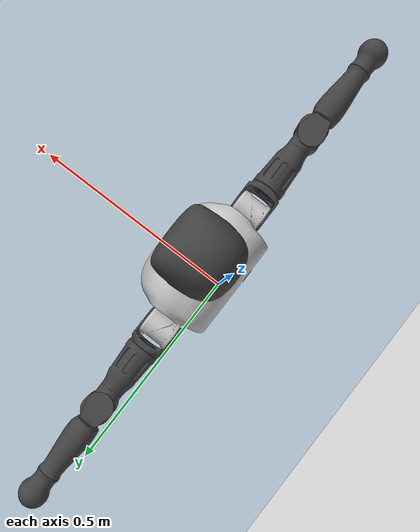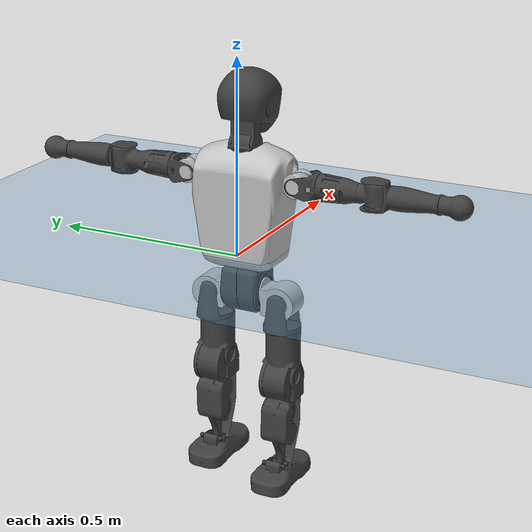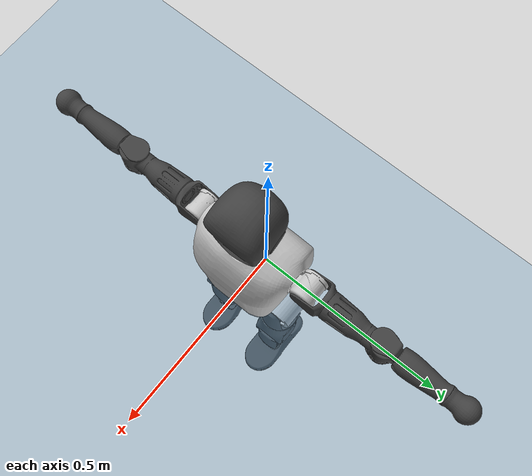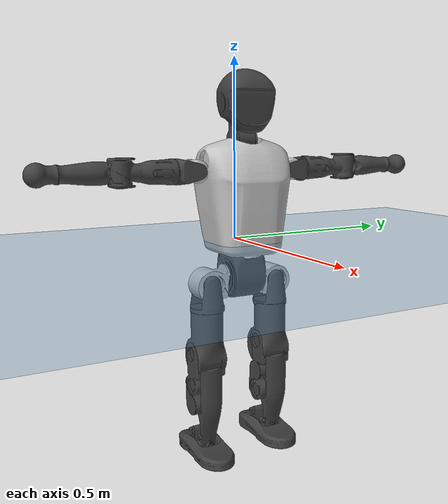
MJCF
<mujoco model="T1">
  <compiler angle="radian" assetdir="assets" balanceinertia="true" inertiafromgeom="false"/>

  <option timestep="0.005" density="1.2" viscosity="2e-05"/>

  <size nkey="1"/>

  <visual>
    <quality shadowsize="8192"/>
    <map shadowclip="0.5"/>
  </visual>

  <default>
    <default class="/">
      <joint armature="0.01" damping="0.01" frictionloss="0.1"/>
      <geom contype="0" conaffinity="0" group="1" solref="-1000 -80"/>
      <site size="0.01 0.005 0.005" group="5"/>
      <general forcelimited="true" biastype="affine" gainprm="25" biasprm="0 -25 -0.6"/>
      <default class="t1">
        <geom rgba="0.25 0.25 0.25 1"/>
        <default class="visual">
          <geom type="mesh" group="2"/>
        </default>
        <default class="collision">
          <geom group="3"/>
        </default>
        <default class="foot">
          <geom size="0.1115 0.05 0.015" type="box" condim="6" group="4" priority="1" solimp="0.015 1 0.015"/>
        </default>
        <default class="reward_collision_sphere">
          <geom group="5" rgba="1 0 0 1"/>
        </default>
      </default>
    </default>
  </default>

  <asset>
    <texture type="skybox" colorspace="auto" name="//unnamed_texture_0" builtin="gradient" rgb1="0.95 0.95 0.95" rgb2="0.95 0.95 0.95" width="100" height="600"/>
    <texture type="2d" colorspace="auto" name="texplane" builtin="checker" rgb1="0.345 0.575 0.748" rgb2="0.345 0.575 0.748" markrgb="1 1 1" width="512" height="512"/>
    <material name="MatPlane" class="/" texture="texplane" texuniform="true" texrepeat="2 2" specular="0.9"/>
    <mesh name="Trunk" class="/" file="Trunk.stl"/>
    <mesh name="H1" class="/" file="H1.stl"/>
    <mesh name="H2" class="/" file="H2.stl"/>
    <mesh name="AL1" class="/" file="AL1.stl"/>
    <mesh name="AL2" class="/" file="AL2.stl"/>
    <mesh name="AL3" class="/" file="AL3.stl"/>
    <mesh name="left_hand_link" class="/" file="left_hand_link.stl"/>
    <mesh name="AR1" class="/" file="AR1.stl"/>
    <mesh name="AR2" class="/" file="AR2.stl"/>
    <mesh name="AR3" class="/" file="AR3.stl"/>
    <mesh name="right_hand_link" class="/" file="right_hand_link.stl"/>
    <mesh name="Waist" class="/" file="Waist.stl"/>
    <mesh name="Hip_Pitch_Left" class="/" file="Hip_Pitch_Left.stl"/>
    <mesh name="Hip_Roll_Left" class="/" file="Hip_Roll_Left.stl"/>
    <mesh name="Hip_Yaw_Left" class="/" file="Hip_Yaw_Left.stl"/>
    <mesh name="Shank_Left" class="/" file="Shank_Left.stl"/>
    <mesh name="Ankle_Cross_Left" class="/" file="Ankle_Cross_Left.stl"/>
    <mesh name="left_foot_link" class="/" file="left_foot_link.stl"/>
    <mesh name="Hip_Pitch_Right" class="/" file="Hip_Pitch_Right.stl"/>
    <mesh name="Hip_Roll_Right" class="/" file="Hip_Roll_Right.stl"/>
    <mesh name="Hip_Yaw_Right" class="/" file="Hip_Yaw_Right.stl"/>
    <mesh name="Shank_Right" class="/" file="Shank_Right.stl"/>
    <mesh name="Ankle_Cross_Right" class="/" file="Ankle_Cross_Right.stl"/>
    <mesh name="right_foot_link" class="/" file="right_foot_link.stl"/>
  </asset>

  <worldbody>
    <geom name="floor" class="/" size="100 100 0.125" type="plane" group="0" material="MatPlane"/>
    <light name="toplight_shadow" class="/" pos="0 0 5" dir="0.0990148 0.0990148 -0.990148" type="directional" ambient="0.04 0.04 0.04" diffuse="0.55 0.55 0.55" specular="0.12 0.12 0.12"/>
    <light name="toplight_fill" class="/" pos="0 0 5" dir="0.0990148 0.0990148 -0.990148" type="directional" castshadow="false" ambient="0.04 0.04 0.04" diffuse="0.3 0.3 0.3" specular="0.08 0.08 0.08"/>
    <body name="trunk" childclass="t1" pos="-0.00275231 -0.000826168 0.00179652" quat="1 -0.000157263 -0.000188584 0.000117627">
      <inertial pos="0.0420144 0.00155248 0.0965694" quat="0.999963 -7.0327e-05 -0.00863268 0.000187979" mass="7.37549" diaginertia="0.0222974 0.0516071 0.0310679"/>
      <joint name="//unnamed_joint_0" type="free" armature="0" damping="0" frictionloss="0"/>
      <geom name="//unnamed_geom_1" class="visual" rgba="0.76 0.76 0.76 1" mesh="Trunk"/>
      <geom name="//unnamed_geom_2" class="collision" size="0.0643359 0.0857811 0.128672" pos="0.0450587 0 0.107071" type="box"/>
      <geom name="//unnamed_geom_3" class="reward_collision_sphere" size="0.0986483" pos="0.0450587 0 0.0892256"/>
      <geom name="//unnamed_geom_4" class="reward_collision_sphere" size="0.0128672" pos="0.0450587 0.0790669 0"/>
      <geom name="//unnamed_geom_5" class="reward_collision_sphere" size="0.0128672" pos="0.0450587 -0.0790669 0"/>
      <geom name="//unnamed_geom_6" class="reward_collision_sphere" size="0.0128672" pos="0.0450587 0.0995313 0.160606"/>
      <geom name="//unnamed_geom_7" class="reward_collision_sphere" size="0.0128672" pos="0.0450587 -0.0995313 0.160606"/>
      <site name="imu" pos="0.00897948 -0.0113776 0.0107359" size="0.00857811"/>
      <camera name="track" pos="0 -1.8604 0" quat="0.707107 0.707107 0 0" mode="trackcom"/>
      <camera name="ego_camera" pos="0.0916194 0 0.374748" quat="-0.5 -0.5 0.5 0.5"/>
      <body name="H1" pos="0.0471409 0.00043796 0.214632" quat="1 -6.98428e-07 2.63429e-05 1.06243e-05">
        <inertial pos="-0.00228958 0.00106381 0.0529724" quat="0.761287 -0.0128046 -0.00399882 0.648277" mass="0.26673" diaginertia="5.61151e-05 0.000154636 8.24653e-05"/>
        <joint name="AAHead_yaw" pos="0 0 0" axis="-0.0071073 -0.00215743 0.999972" range="-1.62479 1.54142" armature="0.00789736" damping="0" frictionloss="0.0797287"/>
        <geom name="//unnamed_geom_8" class="visual" mesh="H1"/>
        <body name="H2" pos="-0.000547807 -0.000257065 0.0572984" quat="1 -1.97095e-05 2.41892e-05 5.22054e-05">
          <inertial pos="0.00641382 0.00216883 0.0873189" quat="0.990437 0.0967 -0.0662733 -0.0727403" mass="0.393845" diaginertia="0.000464166 0.00137137 0.000963445"/>
          <joint name="Head_pitch" pos="0 0 0" axis="0.000644836 -0.999991 -0.00413326" range="-1.21104 0.346473" armature="0.00863004" damping="0.0143444" frictionloss="0.0764387"/>
          <geom name="//unnamed_geom_9" class="visual" mesh="H2"/>
          <geom name="//unnamed_geom_10" class="collision" size="0.0686249" pos="0.00750979 0 0.0981482"/>
          <geom name="//unnamed_geom_11" class="reward_collision_sphere" size="0.077203" pos="0.0150196 0 0.0892256"/>
        </body>
      </body>
      <body name="AL1" pos="0.0442474 0.102137 0.19323" quat="1 5.00897e-05 0.000434751 0.000120831">
        <inertial pos="-0.00356085 0.0412969 0.0011199" quat="0.506972 0.497576 -0.501624 0.493731" mass="0.333144" diaginertia="0.000326826 0.000943164 0.000169641"/>
        <joint name="Left_Shoulder_Pitch" pos="0 0 0" axis="-0.00158699 0.999894 -0.0144946" stiffness="0.00628169" range="-3.31953 1.27661" armature="0.00913426" damping="0.00781569" frictionloss="0.0816795"/>
        <geom name="//unnamed_geom_12" class="visual" rgba="0.76 0.76 0.76 1" mesh="AL1"/>
        <body name="AL2" pos="-0.000523335 0.0436918 -0.00275345" quat="1 0.000207343 0.000396153 -0.000275346">
          <inertial pos="0.00134673 0.032565 0.000253041" quat="0.490793 0.509098 -0.487286 0.512342" mass="0.0968546" diaginertia="9.35431e-05 0.000238464 9.6033e-05"/>
          <joint name="Left_Shoulder_Roll" pos="0 0 0" axis="-0.999993 0.000193551 -0.00377823" range="-1.63092 1.78985" armature="0.00863228" damping="0.0112525" frictionloss="0.0848354"/>
          <geom name="//unnamed_geom_13" class="visual" mesh="AL2"/>
          <body name="AL3" pos="0.00152735 0.0558538 0.00300766" quat="1 0.000313267 0.00066375 0.000488277">
            <inertial pos="0.000234981 0.078713 -0.000587616" quat="0.707207 0.706988 -0.00270871 0.00437718" mass="0.656911" diaginertia="0.00316698 0.0088651 0.000347617"/>
            <joint name="Left_Elbow_Pitch" pos="0 0 0" axis="0.00219465 -0.999998 0.000415397" range="-2.25893 2.26367" armature="0.00765959" damping="0.0172318" frictionloss="0.0802633"/>
            <geom name="//unnamed_geom_14" class="visual" mesh="AL3"/>
            <geom name="//unnamed_geom_15" class="collision" size="0.0257343 0.0643359" pos="0 0.0465099 0" quat="0.707105 0.707108 0 0" type="cylinder"/>
            <geom name="//unnamed_geom_16" class="reward_collision_sphere" size="0.0308812"/>
            <body name="left_hand_link" pos="-0.0022012 0.137286 0.00150995" quat="1 9.77711e-05 -0.000110334 4.40035e-05">
              <inertial pos="0.000953166 0.0999057 0.00269795" quat="0.715072 0.699 0.00753725 0.00359668" mass="0.200133" diaginertia="0.00197349 0.00568712 0.000120307"/>
              <joint name="Left_Elbow_Yaw" pos="0 0 0" axis="0.00386319 0.00552871 0.999977" stiffness="0.00408571" range="-2.46177 -0.0529403" armature="0.00854566" damping="0.01418" frictionloss="0.0887082"/>
              <geom name="//unnamed_geom_17" class="visual" mesh="left_hand_link"/>
              <geom name="//unnamed_geom_18" class="collision" size="0.0257343 0.0750585" pos="0 0.120926 0" quat="0.707105 0.707108 0 0" type="cylinder"/>
              <geom name="//unnamed_geom_19" class="reward_collision_sphere" size="0.0428906"/>
              <geom name="//unnamed_geom_20" class="reward_collision_sphere" size="0.0300234" pos="0 0.102322 0"/>
              <geom name="//unnamed_geom_21" class="reward_collision_sphere" size="0.0300234" pos="0 0.199993 0"/>
            </body>
          </body>
        </body>
      </body>
      <body name="AR1" pos="0.0454705 -0.0978363 0.193054" quat="0.999999 -0.000357826 0.00131743 1.09964e-05">
        <inertial pos="-0.00231344 -0.0428158 -0.000442304" quat="0.505683 0.49765 -0.503949 0.49261" mass="0.324323" diaginertia="0.000317225 0.00087351 0.000160642"/>
        <joint name="Right_Shoulder_Pitch" pos="0 0 0" axis="-0.00109343 -0.999999 -9.24882e-05" stiffness="0.00404246" range="-1.19502 3.32328" armature="0.00970951" damping="0.0085084" frictionloss="0.0923766"/>
        <geom name="//unnamed_geom_22" class="visual" rgba="0.76 0.76 0.76 1" mesh="AR1"/>
        <body name="AR2" pos="-0.000737088 -0.0456806 -0.000490862" quat="0.999999 -6.29724e-05 0.000525445 0.00106936">
          <inertial pos="0.0002902 -0.0361837 -0.00216085" quat="0.50847 0.493094 -0.50242 0.495874" mass="0.100762" diaginertia="9.36781e-05 0.000238497 9.97639e-05"/>
          <joint name="Right_Shoulder_Roll" pos="0 0 0" axis="-0.999815 0.0158053 0.0109867" range="-1.75645 1.59094" armature="0.00857274" damping="0.00855708" frictionloss="0.0829053"/>
          <geom name="//unnamed_geom_23" class="visual" mesh="AR2"/>
          <body name="AR3" pos="-0.000568776 -0.0571895 0.000124255" quat="1 0.000598508 -6.73378e-05 -0.000172331">
            <inertial pos="-0.00138401 -0.0800398 0.000683391" quat="0.706495 0.707718 0.000126127 -2.24899e-05" mass="0.627563" diaginertia="0.00299671 0.00869583 0.000330494"/>
            <joint name="Right_Elbow_Pitch" pos="0 0 0" axis="0.000216592 1 -0.000351806" range="-2.30198 2.28591" armature="0.00859275" damping="0.0136452" frictionloss="0.0797941"/>
            <geom name="//unnamed_geom_24" class="visual" mesh="AR3"/>
            <geom name="//unnamed_geom_25" class="collision" size="0.0257343 0.0643359" pos="0 -0.0465099 0" quat="0.707105 0.707108 0 0" type="cylinder"/>
            <geom name="//unnamed_geom_26" class="reward_collision_sphere" size="0.0308812"/>
            <body name="right_hand_link" pos="-0.00277348 -0.135628 0.00122281" quat="1 -3.90117e-05 5.65159e-05 -2.37248e-05">
              <inertial pos="-0.00030725 -0.0993586 -0.000446256" quat="0.707718 0.70648 0.0045886 -0.00117575" mass="0.201362" diaginertia="0.00194044 0.00564265 0.000116474"/>
              <joint name="Right_Elbow_Yaw" pos="0 0 0" axis="0.00125488 0.00470694 0.999988" stiffness="0.00133061" range="-0.0482591 2.43265" armature="0.00729312" damping="0.0117122" frictionloss="0.097068"/>
              <geom name="//unnamed_geom_27" class="visual" mesh="right_hand_link"/>
              <geom name="//unnamed_geom_28" class="collision" size="0.0257343 0.0750585" pos="0 -0.120926 0" quat="0.707105 0.707108 0 0" type="cylinder"/>
              <geom name="//unnamed_geom_29" class="reward_collision_sphere" size="0.0428906"/>
              <geom name="//unnamed_geom_30" class="reward_collision_sphere" size="0.0300234" pos="0 -0.102322 0"/>
              <geom name="//unnamed_geom_31" class="reward_collision_sphere" size="0.0300234" pos="0 -0.199993 0"/>
            </body>
          </body>
        </body>
      </body>
      <body name="Waist" pos="0.0485511 -0.00410536 -0.100545" quat="1 0.00010712 -2.34139e-05 -1.60701e-06">
        <inertial pos="0.00168161 0.00146329 0.00449763" quat="0.983623 -0.00118565 -0.180231 0.000992815" mass="1.57499" diaginertia="0.00123446 0.00347427 0.00254029"/>
        <joint name="Waist" pos="0 0 0" axis="0.011534 0.00262183 0.99993" stiffness="0.0079246" range="-1.57212 1.60965" armature="0.00850491" damping="0.00938232" frictionloss="0.0839912"/>
        <geom name="//unnamed_geom_32" class="visual" mesh="Waist"/>
        <body name="Hip_Pitch_Left" pos="0.000560126 0.0965612 5.46847e-05" quat="0.999999 0.000118015 2.43453e-06 -0.00122203">
          <inertial pos="0.000689399 -0.00800786 -0.0157547" quat="0.975647 0.218805 0.0152075 0.00243264" mass="0.662824" diaginertia="0.000442852 0.00106889 0.00071011"/>
          <joint name="Left_Hip_Pitch" pos="0 0 0" axis="0.000726932 0.999982 0.00593168" stiffness="0.00406542" range="-1.74812 1.54019" armature="0.00971143" damping="0.0142832" frictionloss="0.0822451"/>
          <geom name="//unnamed_geom_33" class="visual" rgba="0.76 0.76 0.76 1" mesh="Hip_Pitch_Left"/>
          <body name="Hip_Roll_Left" pos="0.00254288 -0.00332175 -0.0135265" quat="1 0.000135988 -0.00021191 0.000164005">
            <inertial pos="0.00169786 0.00088474 -0.0508217" quat="0.70676 -0.00641704 -0.00729515 0.707387" mass="0.237315" diaginertia="0.00040343 0.0010386 0.00027982"/>
            <joint name="Left_Hip_Roll" pos="0 0 0" axis="-0.999914 0.00951716 0.00897786" range="-1.59713 0.255024" armature="0.00937925" damping="0.0167435" frictionloss="0.0927445"/>
            <geom name="//unnamed_geom_34" class="visual" mesh="Hip_Roll_Left"/>
            <geom name="//unnamed_geom_35" class="reward_collision_sphere" size="0.0471796"/>
            <body name="Hip_Yaw_Left" pos="0.00583165 -0.00339196 -0.0698284" quat="0.999999 -6.95396e-05 0.00118567 0.000405219">
              <inertial pos="-0.00386734 0.00135847 -0.0816563" quat="0.702938 -0.0270842 -0.024531 0.710312" mass="1.38042" diaginertia="0.00597948 0.0177989 0.00146769"/>
              <joint name="Left_Hip_Yaw" pos="0 0 0" axis="-0.0036209 -0.000204408 -0.999993" range="-0.986458 0.994839" armature="0.00854596" damping="0.0136828" frictionloss="0.0850578"/>
              <geom name="//unnamed_geom_36" class="visual" mesh="Hip_Yaw_Left"/>
              <geom name="//unnamed_geom_37" class="collision" size="0.0428906 0.0686249" type="cylinder"/>
              <body name="Shank_Left" pos="-0.00457289 -0.00141798 -0.113212" quat="1 -5.96316e-05 0.000149562 -0.000303302">
                <inertial pos="-0.00602326 -0.000989128 -0.111164" quat="0.997363 -0.00231471 -0.0359934 0.0629762" mass="1.12722" diaginertia="0.00869123 0.0247888 0.00105372"/>
                <joint name="Left_Knee_Pitch" pos="0 0 0" axis="0.0077442 0.99994 -0.0077973" range="0.00389693 2.29284" armature="0.00958927" damping="0" frictionloss="0.0892319"/>
                <geom name="//unnamed_geom_38" class="visual" mesh="Shank_Left"/>
                <geom name="//unnamed_geom_39" class="collision" size="0.0428906 0.0643359" pos="0 0 -0.107071" type="cylinder"/>
                <geom name="//unnamed_geom_40" class="reward_collision_sphere" size="0.0557577"/>
                <body name="Ankle_Cross_Left" pos="0.000385714 -0.00148067 -0.252202" quat="0.999999 0.000784239 -0.00099563 -0.000357853">
                  <inertial pos="-0.00128933 0.00162111 -0.00453093" quat="0.445994 0.552561 0.547462 0.442776" mass="0.0461163" diaginertia="6.674e-06 1.78171e-05 6.60545e-06"/>
                  <joint name="Left_Ankle_Pitch" pos="0 0 0" axis="0.00024549 1 -0.000149049" range="-0.866421 0.339841" armature="0.00818196" damping="0.0118949" frictionloss="0.0823154"/>
                  <geom name="//unnamed_geom_41" class="visual" mesh="Ankle_Cross_Left"/>
                  <body name="left_foot_link" pos="-0.00295654 -0.00226006 -0.0091218" quat="1 0.000548078 -8.44304e-05 0.000484478">
                    <inertial pos="-0.00186811 -0.00240944 -0.00887857" quat="-0.00107071 0.620985 -0.00061788 0.783822" mass="0.423125" diaginertia="0.000616618 0.00163309 0.00126246"/>
                    <joint name="Left_Ankle_Roll" pos="0 0 0" axis="-0.999983 -0.00362373 0.00463564" range="-0.396483 0.485825" armature="0.00850164" damping="0.000158515" frictionloss="0.0776309"/>
                    <geom name="//unnamed_geom_42" class="visual" mesh="left_foot_link"/>
                    <geom name="left_foot" class="foot" size="0.105917 0.0430474 0.0125585" pos="0.00750979 0 -0.0133838"/>
                    <geom name="//unnamed_geom_44" class="reward_collision_sphere" size="0.0446062" pos="0.00750979 0 -0.0133838"/>
                    <geom name="//unnamed_geom_45" class="reward_collision_sphere" size="0.0257343" pos="0.071343 -0.0213946 -0.0133838"/>
                    <geom name="//unnamed_geom_46" class="reward_collision_sphere" size="0.0257343" pos="-0.0525685 -0.0213946 -0.0133838"/>
                    <site name="left_foot" class="foot" pos="0.00750979 0 -0.0133838" size="0.00857811"/>
                  </body>
                </body>
              </body>
            </body>
          </body>
        </body>
        <body name="Hip_Pitch_Right" pos="-0.00455306 -0.101321 0.0022537" quat="1 -0.000143041 0.000226609 0.000106988">
          <inertial pos="0.000630313 0.0064581 -0.018229" quat="0.972313 -0.233621 0.00513194 -0.0013024" mass="0.646715" diaginertia="0.000440173 0.0010468 0.000718024"/>
          <joint name="Right_Hip_Pitch" pos="0 0 0" axis="0.00588413 -0.999977 0.00338295" range="-1.60895 1.75095" armature="0.00740364" damping="0.00928501" frictionloss="0.0976798"/>
          <geom name="//unnamed_geom_47" class="visual" rgba="0.76 0.76 0.76 1" mesh="Hip_Pitch_Right"/>
          <body name="Hip_Roll_Right" pos="-0.00265903 -0.0013259 -0.0157558" quat="0.999999 -0.000789134 -0.000674541 0.000752371">
            <inertial pos="-0.00104935 0.00227093 -0.0457861" quat="0.705125 -0.0026669 -0.00474014 0.709062" mass="0.249182" diaginertia="0.000410615 0.00101596 0.000291838"/>
            <joint name="Right_Hip_Roll" pos="0 0 0" axis="-0.999995 0.00233298 0.00191665" stiffness="0.00171338" range="-0.220309 1.55875" armature="0.0089224" damping="0.0183951" frictionloss="0.0947802"/>
            <geom name="//unnamed_geom_48" class="visual" mesh="Hip_Roll_Right"/>
            <geom name="//unnamed_geom_49" class="reward_collision_sphere" size="0.0471796"/>
            <body name="Hip_Yaw_Right" pos="0.00123375 -0.00232077 -0.0775273" quat="1 -0.000376013 0.000251338 9.86393e-05">
              <inertial pos="-0.005397 -0.00198081 -0.0772606" quat="0.711125 -0.032125 -0.0352324 0.701447" mass="1.38521" diaginertia="0.00610496 0.0171917 0.00144846"/>
              <joint name="Right_Hip_Yaw" pos="0 0 0" axis="0.00554521 -0.00010493 -0.999985" range="-0.980892 1.0251" armature="0.00898271" damping="0.00259492" frictionloss="0.0745589"/>
              <geom name="//unnamed_geom_50" class="visual" mesh="Hip_Yaw_Right"/>
              <geom name="//unnamed_geom_51" class="collision" size="0.0428906 0.0686249" type="cylinder"/>
              <body name="Shank_Right" pos="-0.0109917 -0.00262361 -0.121106" quat="0.999999 0.000138414 0.00124865 -0.000365324">
                <inertial pos="-0.00538738 -0.00124459 -0.109414" quat="0.99952 0.00271999 -0.0164694 -0.0260979" mass="1.15454" diaginertia="0.00821198 0.0246344 0.00111808"/>
                <joint name="Right_Knee_Pitch" pos="0 0 0" axis="0.00262252 -0.999995 0.00163579" range="-2.34472 -0.0166654" armature="0.0076659" damping="0.0104" frictionloss="0.0829716"/>
                <geom name="//unnamed_geom_52" class="visual" mesh="Shank_Right"/>
                <geom name="//unnamed_geom_53" class="collision" size="0.0428906 0.0643359" pos="0 0 -0.107071" type="cylinder"/>
                <geom name="//unnamed_geom_54" class="reward_collision_sphere" size="0.0557577"/>
                <body name="Ankle_Cross_Right" pos="-0.000121654 0.00127977 -0.253875" quat="1 -9.73723e-05 -9.74543e-06 -0.000123589">
                  <inertial pos="-0.00116161 0.00309115 -0.00698209" quat="0.443881 0.550175 0.550662 0.443901" mass="0.0441516" diaginertia="6.8766e-06 1.71486e-05 6.36838e-06"/>
                  <joint name="Right_Ankle_Pitch" pos="0 0 0" axis="-0.00208156 -0.999996 0.00214448" range="-0.302355 0.835102" armature="0.00872282" damping="0.0207697" frictionloss="0.0855658"/>
                  <geom name="//unnamed_geom_55" class="visual" mesh="Ankle_Cross_Right"/>
                  <body name="right_foot_link" pos="0.00108002 0.000308859 -0.0182835" quat="1 -5.14186e-06 -0.000116602 0.000171822">
                    <inertial pos="-2.56429e-06 0.000941385 -0.00707044" quat="-0.000829729 0.620041 0.00429809 0.784557" mass="0.425199" diaginertia="0.000658219 0.00169204 0.00126924"/>
                    <joint name="Right_Ankle_Roll" pos="0 0 0" axis="-0.999942 0.00768369 0.00756693" stiffness="0.000661817" range="-0.4662 0.436852" armature="0.00939969" damping="0.0150943" frictionloss="0.0942483"/>
                    <geom name="//unnamed_geom_56" class="visual" mesh="right_foot_link"/>
                    <geom name="right_foot" class="foot" size="0.099011 0.0409443 0.0132416" pos="0.00750979 0 -0.0133838"/>
                    <geom name="//unnamed_geom_58" class="reward_collision_sphere" size="0.0343125"/>
                    <geom name="//unnamed_geom_59" class="reward_collision_sphere" size="0.0257343" pos="0.00750979 0 -0.0133838"/>
                    <geom name="//unnamed_geom_60" class="reward_collision_sphere" size="0.0257343" pos="0.071343 0.0213946 -0.0133838"/>
                    <geom name="//unnamed_geom_61" class="reward_collision_sphere" size="0.0257343" pos="-0.0525685 0.0213946 -0.0133838"/>
                    <site name="right_foot" class="foot" pos="0.00750979 0 -0.0133838" size="0.00857811"/>
                  </body>
                </body>
              </body>
            </body>
          </body>
        </body>
      </body>
    </body>
  </worldbody>

  <contact>
    <pair class="/" geom1="floor" geom2="left_foot" name="//unnamed_contact_0"/>
    <pair class="/" geom1="floor" geom2="right_foot" name="//unnamed_contact_1"/>
  </contact>

  <actuator>
    <general name="AAHead_yaw" class="/" joint="AAHead_yaw" forcerange="-6.03783 6.03783" gainprm="19.8688" biasprm="0 -19.8688 -0.542837"/>
    <general name="Head_pitch" class="/" joint="Head_pitch" forcerange="-5.78306 5.78306" gainprm="19.8688" biasprm="0 -19.8688 -0.542837"/>
    <general name="Left_Shoulder_Pitch" class="/" joint="Left_Shoulder_Pitch" forcerange="-16.1933 16.1933" gainprm="19.8688" biasprm="0 -19.8688 -0.542837"/>
    <general name="Left_Shoulder_Roll" class="/" joint="Left_Shoulder_Roll" forcerange="-15.0574 15.0574" gainprm="19.8688" biasprm="0 -19.8688 -0.542837"/>
    <general name="Left_Elbow_Pitch" class="/" joint="Left_Elbow_Pitch" forcerange="-16.784 16.784" gainprm="19.8688" biasprm="0 -19.8688 -0.542837"/>
    <general name="Left_Elbow_Yaw" class="/" joint="Left_Elbow_Yaw" forcerange="-15.8836 15.8836" gainprm="19.8688" biasprm="0 -19.8688 -0.542837"/>
    <general name="Right_Shoulder_Pitch" class="/" joint="Right_Shoulder_Pitch" forcerange="-14.734 14.734" gainprm="19.8688" biasprm="0 -19.8688 -0.542837"/>
    <general name="Right_Shoulder_Roll" class="/" joint="Right_Shoulder_Roll" forcerange="-16.5659 16.5659" gainprm="19.8688" biasprm="0 -19.8688 -0.542837"/>
    <general name="Right_Elbow_Pitch" class="/" joint="Right_Elbow_Pitch" forcerange="-16.2831 16.2831" gainprm="19.8688" biasprm="0 -19.8688 -0.542837"/>
    <general name="Right_Elbow_Yaw" class="/" joint="Right_Elbow_Yaw" forcerange="-14.0489 14.0489" gainprm="19.8688" biasprm="0 -19.8688 -0.542837"/>
    <general name="Waist" class="/" joint="Waist" forcerange="-24.6707 24.6707" gainprm="19.8688" biasprm="0 -19.8688 -0.542837"/>
    <general name="Left_Hip_Pitch" class="/" joint="Left_Hip_Pitch" forcerange="-39.0026 39.0026" gainprm="19.8688" biasprm="0 -19.8688 -0.542837"/>
    <general name="Left_Hip_Roll" class="/" joint="Left_Hip_Roll" forcerange="-28.3818 28.3818" gainprm="19.8688" biasprm="0 -19.8688 -0.542837"/>
    <general name="Left_Hip_Yaw" class="/" joint="Left_Hip_Yaw" forcerange="-23.2574 23.2574" gainprm="19.8688" biasprm="0 -19.8688 -0.542837"/>
    <general name="Left_Knee_Pitch" class="/" joint="Left_Knee_Pitch" forcerange="-52.9592 52.9592" gainprm="19.8688" biasprm="0 -19.8688 -0.542837"/>
    <general name="Left_Ankle_Pitch" class="/" joint="Left_Ankle_Pitch" forcerange="-17.134 17.134" gainprm="19.8688" biasprm="0 -19.8688 -0.542837"/>
    <general name="Left_Ankle_Roll" class="/" joint="Left_Ankle_Roll" forcerange="-14.0959 14.0959" gainprm="19.8688" biasprm="0 -19.8688 -0.542837"/>
    <general name="Right_Hip_Pitch" class="/" joint="Right_Hip_Pitch" forcerange="-39.3702 39.3702" gainprm="19.8688" biasprm="0 -19.8688 -0.542837"/>
    <general name="Right_Hip_Roll" class="/" joint="Right_Hip_Roll" forcerange="-24.7127 24.7127" gainprm="19.8688" biasprm="0 -19.8688 -0.542837"/>
    <general name="Right_Hip_Yaw" class="/" joint="Right_Hip_Yaw" forcerange="-26.108 26.108" gainprm="19.8688" biasprm="0 -19.8688 -0.542837"/>
    <general name="Right_Knee_Pitch" class="/" joint="Right_Knee_Pitch" forcerange="-56.52 56.52" gainprm="19.8688" biasprm="0 -19.8688 -0.542837"/>
    <general name="Right_Ankle_Pitch" class="/" joint="Right_Ankle_Pitch" forcerange="-17.7068 17.7068" gainprm="19.8688" biasprm="0 -19.8688 -0.542837"/>
    <general name="Right_Ankle_Roll" class="/" joint="Right_Ankle_Roll" forcerange="-13.5316 13.5316" gainprm="19.8688" biasprm="0 -19.8688 -0.542837"/>
  </actuator>

  <sensor>
    <gyro site="imu" name="imu_angular_velocity"/>
    <velocimeter site="imu" name="imu_linear_velocity"/>
    <framelinvel objtype="site" objname="left_foot" name="left_foot_global_linear_velocity"/>
    <framelinvel objtype="site" objname="right_foot" name="right_foot_global_linear_velocity"/>
  </sensor>

  <keyframe>
    <key name="home" qpos="0 0 0.6385 1 0 0 0 0 0 0 1.4 0 -0.4 0 -1.4 0 0.4 0 -0.4 0 0 0.8 -0.4 0 0.4 0 0 -0.8 0.4 0"/>
  </keyframe>
</mujoco>
